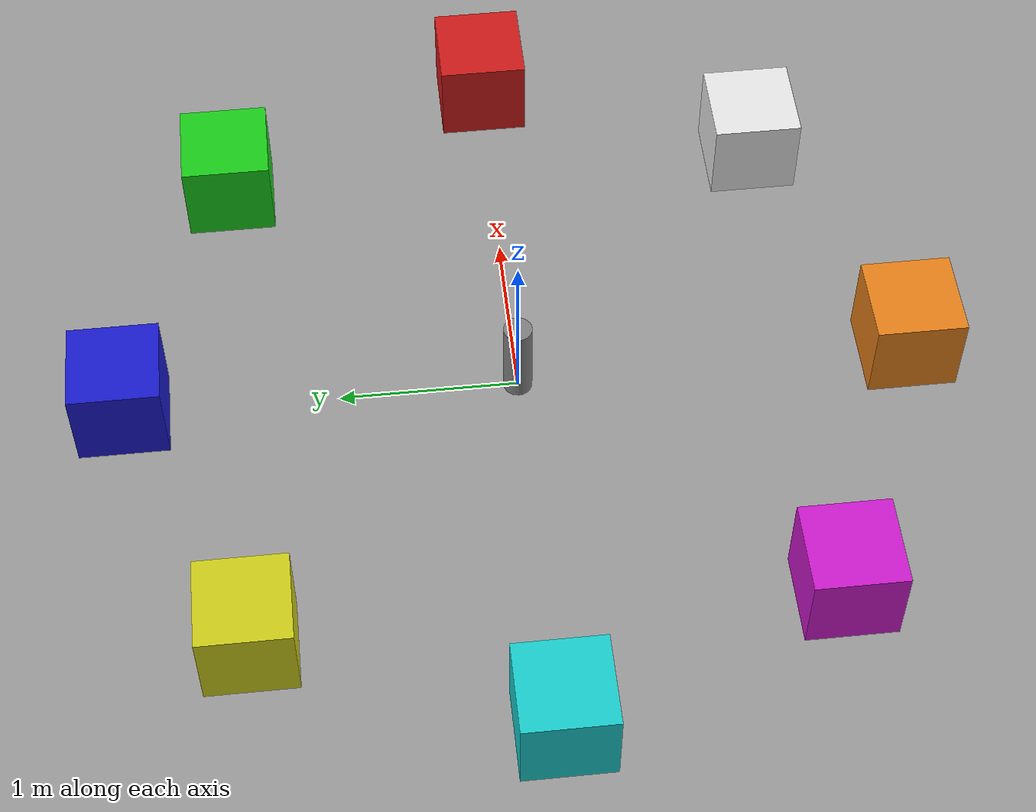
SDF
<?xml version="1.0" ?>
<!-- 云台相机测试世界：地面 + 固定底座柱 + 一圈彩色方块
     方块环绕放置，云台任意朝向都能拍到彩色目标，便于验证相机话题画面
     注：ground_plane/sun 内联实现（不用 model:// 引用，避免 GAZEBO_MODEL_PATH 缺
     /usr/share/gazebo-11/models 时 gazebo 卡在 fuel 下载——v1.2 同款坑） -->
<sdf version="1.6">
  <world name="default">
    <!-- 地面 -->
    <model name="ground_plane">
      <static>true</static>
      <link name="link">
        <collision name="collision">
          <geometry>
            <plane><normal>0 0 1</normal><size>100 100</size></plane>
          </geometry>
          <surface>
            <friction>
              <ode><mu>1</mu><mu2>1</mu2></ode>
            </friction>
            <bounce>
              <restitution_coefficient>0</restitution_coefficient>
            </bounce>
            <contact>
              <ode><soft_cfm>0</soft_cfm><soft_erp>0.2</soft_erp></ode>
            </contact>
          </surface>
        </collision>
        <visual name="visual">
          <cast_shadows>false</cast_shadows>
          <geometry>
            <plane><normal>0 0 1</normal><size>100 100</size></plane>
          </geometry>
          <material>
            <ambient>0.5 0.5 0.5 1</ambient>
            <diffuse>0.6 0.6 0.6 1</diffuse>
            <specular>0.1 0.1 0.1 1</specular>
          </material>
        </visual>
      </link>
    </model>

    <!-- 太阳光（方向光） -->
    <light name="sun" type="directional">
      <pose>0 0 10 0 -0 0</pose>
      <cast_shadows>true</cast_shadows>
      <direction>-0.5 0.1 -0.9</direction>
      <diffuse>0.9 0.9 0.9 1</diffuse>
      <specular>0.2 0.2 0.2 1</specular>
      <attenuation>
        <range>1000</range>
        <constant>0.9</constant>
        <linear>0.01</linear>
        <quadratic>0.001</quadratic>
      </attenuation>
    </light>

    <!-- 固定底座（云台 spawn 在 z=0.5 处） -->
    <model name="gimbal_pedestal">
      <static>true</static>
      <link name="link">
        <pose>0 0 0.25 0 0 0</pose>
        <collision name="collision">
          <geometry>
            <cylinder>
              <radius>0.08</radius>
              <length>0.5</length>
            </cylinder>
          </geometry>
        </collision>
        <visual name="visual">
          <geometry>
            <cylinder>
              <radius>0.08</radius>
              <length>0.5</length>
            </cylinder>
          </geometry>
          <material>
            <ambient>0.5 0.5 0.5 1</ambient>
            <diffuse>0.5 0.5 0.5 1</diffuse>
          </material>
        </visual>
      </link>
    </model>

    <model name="box_red">
      <static>true</static>
      <link name="link">
        <pose>2.2 0 0.25 0 0 0</pose>
        <collision name="collision">
          <geometry><box><size>0.5 0.5 0.5</size></box></geometry>
        </collision>
        <visual name="visual">
          <geometry><box><size>0.5 0.5 0.5</size></box></geometry>
          <material><ambient>0.8 0.1 0.1 1</ambient><diffuse>0.8 0.1 0.1 1</diffuse></material>
        </visual>
      </link>
    </model>

    <model name="box_green">
      <static>true</static>
      <link name="link">
        <pose>1.556 1.556 0.25 0 0 0</pose>
        <collision name="collision">
          <geometry><box><size>0.5 0.5 0.5</size></box></geometry>
        </collision>
        <visual name="visual">
          <geometry><box><size>0.5 0.5 0.5</size></box></geometry>
          <material><ambient>0.1 0.8 0.1 1</ambient><diffuse>0.1 0.8 0.1 1</diffuse></material>
        </visual>
      </link>
    </model>

    <model name="box_blue">
      <static>true</static>
      <link name="link">
        <pose>0 2.2 0.25 0 0 0</pose>
        <collision name="collision">
          <geometry><box><size>0.5 0.5 0.5</size></box></geometry>
        </collision>
        <visual name="visual">
          <geometry><box><size>0.5 0.5 0.5</size></box></geometry>
          <material><ambient>0.1 0.1 0.8 1</ambient><diffuse>0.1 0.1 0.8 1</diffuse></material>
        </visual>
      </link>
    </model>

    <model name="box_yellow">
      <static>true</static>
      <link name="link">
        <pose>-1.556 1.556 0.25 0 0 0</pose>
        <collision name="collision">
          <geometry><box><size>0.5 0.5 0.5</size></box></geometry>
        </collision>
        <visual name="visual">
          <geometry><box><size>0.5 0.5 0.5</size></box></geometry>
          <material><ambient>0.8 0.8 0.1 1</ambient><diffuse>0.8 0.8 0.1 1</diffuse></material>
        </visual>
      </link>
    </model>

    <model name="box_cyan">
      <static>true</static>
      <link name="link">
        <pose>-2.2 0 0.25 0 0 0</pose>
        <collision name="collision">
          <geometry><box><size>0.5 0.5 0.5</size></box></geometry>
        </collision>
        <visual name="visual">
          <geometry><box><size>0.5 0.5 0.5</size></box></geometry>
          <material><ambient>0.1 0.8 0.8 1</ambient><diffuse>0.1 0.8 0.8 1</diffuse></material>
        </visual>
      </link>
    </model>

    <model name="box_magenta">
      <static>true</static>
      <link name="link">
        <pose>-1.556 -1.556 0.25 0 0 0</pose>
        <collision name="collision">
          <geometry><box><size>0.5 0.5 0.5</size></box></geometry>
        </collision>
        <visual name="visual">
          <geometry><box><size>0.5 0.5 0.5</size></box></geometry>
          <material><ambient>0.8 0.1 0.8 1</ambient><diffuse>0.8 0.1 0.8 1</diffuse></material>
        </visual>
      </link>
    </model>

    <model name="box_orange">
      <static>true</static>
      <link name="link">
        <pose>0 -2.2 0.25 0 0 0</pose>
        <collision name="collision">
          <geometry><box><size>0.5 0.5 0.5</size></box></geometry>
        </collision>
        <visual name="visual">
          <geometry><box><size>0.5 0.5 0.5</size></box></geometry>
          <material><ambient>0.9 0.5 0.1 1</ambient><diffuse>0.9 0.5 0.1 1</diffuse></material>
        </visual>
      </link>
    </model>

    <model name="box_white">
      <static>true</static>
      <link name="link">
        <pose>1.556 -1.556 0.25 0 0 0</pose>
        <collision name="collision">
          <geometry><box><size>0.5 0.5 0.5</size></box></geometry>
        </collision>
        <visual name="visual">
          <geometry><box><size>0.5 0.5 0.5</size></box></geometry>
          <material><ambient>0.9 0.9 0.9 1</ambient><diffuse>0.9 0.9 0.9 1</diffuse></material>
        </visual>
      </link>
    </model>
  </world>
</sdf>
